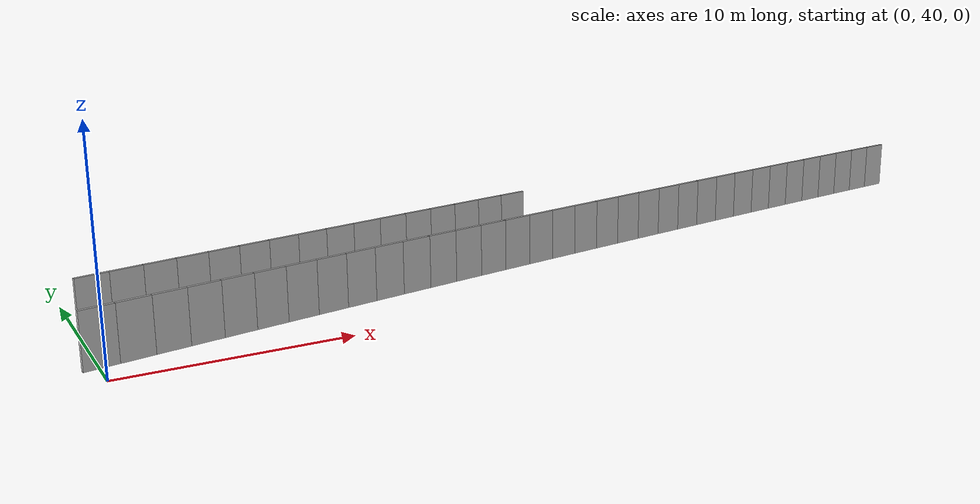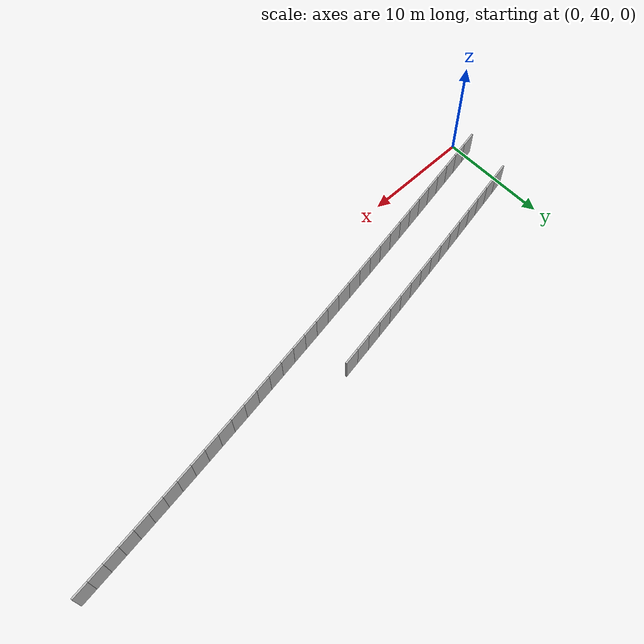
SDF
<?xml version="1.0" ?>
<sdf version="1.6">
  <model name="sps_2046">
    <pose frame="">0 0 0 0 -0 0</pose>
    <static>1</static>
    <self_collide>0</self_collide>
    <allow_auto_disable>0</allow_auto_disable>
    <link name="Wall2953">
      <kinematic>0</kinematic>
      <gravity>1</gravity>
      <self_collide>0</self_collide>
      <collision name="collision">
        <geometry>
          <box>
            <size>1.49646 0.15 2.5</size>
          </box>
        </geometry>
        <pose frame="">0 0 0 0 -0 0</pose>
      </collision>
      <visual name="visual">
        <geometry>
          <box>
            <size>1.49646 0.15 2.5</size>
          </box>
        </geometry>
        <pose frame="">0 0 0 0 -0 0</pose>
        <cast_shadows>1</cast_shadows>
        <transparency>0.0</transparency>
      </visual>
      <pose frame="">48.7704 49.8128 1.25 0 0 -2.99955</pose>
    </link>
    <link name="Wall2954">
      <kinematic>0</kinematic>
      <gravity>1</gravity>
      <self_collide>0</self_collide>
      <collision name="collision">
        <geometry>
          <box>
            <size>1.4964 0.15 2.5</size>
          </box>
        </geometry>
        <pose frame="">0 0 0 0 -0 0</pose>
      </collision>
      <visual name="visual">
        <geometry>
          <box>
            <size>1.4964 0.15 2.5</size>
          </box>
        </geometry>
        <pose frame="">0 0 0 0 -0 0</pose>
        <cast_shadows>1</cast_shadows>
        <transparency>0.0</transparency>
      </visual>
      <pose frame="">47.2892 49.5999 1.25 0 0 -2.9981</pose>
    </link>
    <link name="Wall2955">
      <kinematic>0</kinematic>
      <gravity>1</gravity>
      <self_collide>0</self_collide>
      <collision name="collision">
        <geometry>
          <box>
            <size>1.49656 0.15 2.5</size>
          </box>
        </geometry>
        <pose frame="">0 0 0 0 -0 0</pose>
      </collision>
      <visual name="visual">
        <geometry>
          <box>
            <size>1.49656 0.15 2.5</size>
          </box>
        </geometry>
        <pose frame="">0 0 0 0 -0 0</pose>
        <cast_shadows>1</cast_shadows>
        <transparency>0.0</transparency>
      </visual>
      <pose frame="">45.8082 49.3847 1.25 0 0 -2.99651</pose>
    </link>
    <link name="Wall2956">
      <kinematic>0</kinematic>
      <gravity>1</gravity>
      <self_collide>0</self_collide>
      <collision name="collision">
        <geometry>
          <box>
            <size>1.4964 0.15 2.5</size>
          </box>
        </geometry>
        <pose frame="">0 0 0 0 -0 0</pose>
      </collision>
      <visual name="visual">
        <geometry>
          <box>
            <size>1.4964 0.15 2.5</size>
          </box>
        </geometry>
        <pose frame="">0 0 0 0 -0 0</pose>
        <cast_shadows>1</cast_shadows>
        <transparency>0.0</transparency>
      </visual>
      <pose frame="">44.3277 49.1672 1.25 0 0 -2.99497</pose>
    </link>
    <link name="Wall2957">
      <kinematic>0</kinematic>
      <gravity>1</gravity>
      <self_collide>0</self_collide>
      <collision name="collision">
        <geometry>
          <box>
            <size>1.49666 0.15 2.5</size>
          </box>
        </geometry>
        <pose frame="">0 0 0 0 -0 0</pose>
      </collision>
      <visual name="visual">
        <geometry>
          <box>
            <size>1.49666 0.15 2.5</size>
          </box>
        </geometry>
        <pose frame="">0 0 0 0 -0 0</pose>
        <cast_shadows>1</cast_shadows>
        <transparency>0.0</transparency>
      </visual>
      <pose frame="">42.8474 48.9473 1.25 0 0 -2.99326</pose>
    </link>
    <link name="Wall2958">
      <kinematic>0</kinematic>
      <gravity>1</gravity>
      <self_collide>0</self_collide>
      <collision name="collision">
        <geometry>
          <box>
            <size>1.49636 0.15 2.5</size>
          </box>
        </geometry>
        <pose frame="">0 0 0 0 -0 0</pose>
      </collision>
      <visual name="visual">
        <geometry>
          <box>
            <size>1.49636 0.15 2.5</size>
          </box>
        </geometry>
        <pose frame="">0 0 0 0 -0 0</pose>
        <cast_shadows>1</cast_shadows>
        <transparency>0.0</transparency>
      </visual>
      <pose frame="">41.3675 48.7251 1.25 0 0 -2.99187</pose>
    </link>
    <link name="Wall2959">
      <kinematic>0</kinematic>
      <gravity>1</gravity>
      <self_collide>0</self_collide>
      <collision name="collision">
        <geometry>
          <box>
            <size>1.4965 0.15 2.5</size>
          </box>
        </geometry>
        <pose frame="">0 0 0 0 -0 0</pose>
      </collision>
      <visual name="visual">
        <geometry>
          <box>
            <size>1.4965 0.15 2.5</size>
          </box>
        </geometry>
        <pose frame="">0 0 0 0 -0 0</pose>
        <cast_shadows>1</cast_shadows>
        <transparency>0.0</transparency>
      </visual>
      <pose frame="">39.888 48.5006 1.25 0 0 -2.99015</pose>
    </link>
    <link name="Wall2960">
      <kinematic>0</kinematic>
      <gravity>1</gravity>
      <self_collide>0</self_collide>
      <collision name="collision">
        <geometry>
          <box>
            <size>1.49648 0.15 2.5</size>
          </box>
        </geometry>
        <pose frame="">0 0 0 0 -0 0</pose>
      </collision>
      <visual name="visual">
        <geometry>
          <box>
            <size>1.49648 0.15 2.5</size>
          </box>
        </geometry>
        <pose frame="">0 0 0 0 -0 0</pose>
        <cast_shadows>1</cast_shadows>
        <transparency>0.0</transparency>
      </visual>
      <pose frame="">38.4088 48.2737 1.25 0 0 -2.98862</pose>
    </link>
    <link name="Wall2961">
      <kinematic>0</kinematic>
      <gravity>1</gravity>
      <self_collide>0</self_collide>
      <collision name="collision">
        <geometry>
          <box>
            <size>1.49648 0.15 2.5</size>
          </box>
        </geometry>
        <pose frame="">0 0 0 0 -0 0</pose>
      </collision>
      <visual name="visual">
        <geometry>
          <box>
            <size>1.49648 0.15 2.5</size>
          </box>
        </geometry>
        <pose frame="">0 0 0 0 -0 0</pose>
        <cast_shadows>1</cast_shadows>
        <transparency>0.0</transparency>
      </visual>
      <pose frame="">36.93 48.0445 1.25 0 0 -2.98701</pose>
    </link>
    <link name="Wall2962">
      <kinematic>0</kinematic>
      <gravity>1</gravity>
      <self_collide>0</self_collide>
      <collision name="collision">
        <geometry>
          <box>
            <size>1.49661 0.15 2.5</size>
          </box>
        </geometry>
        <pose frame="">0 0 0 0 -0 0</pose>
      </collision>
      <visual name="visual">
        <geometry>
          <box>
            <size>1.49661 0.15 2.5</size>
          </box>
        </geometry>
        <pose frame="">0 0 0 0 -0 0</pose>
        <cast_shadows>1</cast_shadows>
        <transparency>0.0</transparency>
      </visual>
      <pose frame="">35.4514 47.8129 1.25 0 0 -2.98541</pose>
    </link>
    <link name="Wall2963">
      <kinematic>0</kinematic>
      <gravity>1</gravity>
      <self_collide>0</self_collide>
      <collision name="collision">
        <geometry>
          <box>
            <size>1.49638 0.15 2.5</size>
          </box>
        </geometry>
        <pose frame="">0 0 0 0 -0 0</pose>
      </collision>
      <visual name="visual">
        <geometry>
          <box>
            <size>1.49638 0.15 2.5</size>
          </box>
        </geometry>
        <pose frame="">0 0 0 0 -0 0</pose>
        <cast_shadows>1</cast_shadows>
        <transparency>0.0</transparency>
      </visual>
      <pose frame="">33.9733 47.5789 1.25 0 0 -2.98378</pose>
    </link>
    <link name="Wall2964">
      <kinematic>0</kinematic>
      <gravity>1</gravity>
      <self_collide>0</self_collide>
      <collision name="collision">
        <geometry>
          <box>
            <size>1.49658 0.15 2.5</size>
          </box>
        </geometry>
        <pose frame="">0 0 0 0 -0 0</pose>
      </collision>
      <visual name="visual">
        <geometry>
          <box>
            <size>1.49658 0.15 2.5</size>
          </box>
        </geometry>
        <pose frame="">0 0 0 0 -0 0</pose>
        <cast_shadows>1</cast_shadows>
        <transparency>0.0</transparency>
      </visual>
      <pose frame="">32.4957 47.3425 1.25 0 0 -2.98215</pose>
    </link>
    <link name="Wall2965">
      <kinematic>0</kinematic>
      <gravity>1</gravity>
      <self_collide>0</self_collide>
      <collision name="collision">
        <geometry>
          <box>
            <size>1.49648 0.15 2.5</size>
          </box>
        </geometry>
        <pose frame="">0 0 0 0 -0 0</pose>
      </collision>
      <visual name="visual">
        <geometry>
          <box>
            <size>1.49648 0.15 2.5</size>
          </box>
        </geometry>
        <pose frame="">0 0 0 0 -0 0</pose>
        <cast_shadows>1</cast_shadows>
        <transparency>0.0</transparency>
      </visual>
      <pose frame="">31.0183 47.1039 1.25 0 0 -2.98078</pose>
    </link>
    <link name="Wall2966">
      <kinematic>0</kinematic>
      <gravity>1</gravity>
      <self_collide>0</self_collide>
      <collision name="collision">
        <geometry>
          <box>
            <size>1.49653 0.15 2.5</size>
          </box>
        </geometry>
        <pose frame="">0 0 0 0 -0 0</pose>
      </collision>
      <visual name="visual">
        <geometry>
          <box>
            <size>1.49653 0.15 2.5</size>
          </box>
        </geometry>
        <pose frame="">0 0 0 0 -0 0</pose>
        <cast_shadows>1</cast_shadows>
        <transparency>0.0</transparency>
      </visual>
      <pose frame="">29.5413 46.863 1.25 0 0 -2.97905</pose>
    </link>
    <link name="Wall2967">
      <kinematic>0</kinematic>
      <gravity>1</gravity>
      <self_collide>0</self_collide>
      <collision name="collision">
        <geometry>
          <box>
            <size>1.49657 0.15 2.5</size>
          </box>
        </geometry>
        <pose frame="">0 0 0 0 -0 0</pose>
      </collision>
      <visual name="visual">
        <geometry>
          <box>
            <size>1.49657 0.15 2.5</size>
          </box>
        </geometry>
        <pose frame="">0 0 0 0 -0 0</pose>
        <cast_shadows>1</cast_shadows>
        <transparency>0.0</transparency>
      </visual>
      <pose frame="">28.0647 46.6196 1.25 0 0 -2.9774</pose>
    </link>
    <link name="Wall2968">
      <kinematic>0</kinematic>
      <gravity>1</gravity>
      <self_collide>0</self_collide>
      <collision name="collision">
        <geometry>
          <box>
            <size>1.49644 0.15 2.5</size>
          </box>
        </geometry>
        <pose frame="">0 0 0 0 -0 0</pose>
      </collision>
      <visual name="visual">
        <geometry>
          <box>
            <size>1.49644 0.15 2.5</size>
          </box>
        </geometry>
        <pose frame="">0 0 0 0 -0 0</pose>
        <cast_shadows>1</cast_shadows>
        <transparency>0.0</transparency>
      </visual>
      <pose frame="">26.5885 46.3739 1.25 0 0 -2.97593</pose>
    </link>
    <link name="Wall2969">
      <kinematic>0</kinematic>
      <gravity>1</gravity>
      <self_collide>0</self_collide>
      <collision name="collision">
        <geometry>
          <box>
            <size>1.49654 0.15 2.5</size>
          </box>
        </geometry>
        <pose frame="">0 0 0 0 -0 0</pose>
      </collision>
      <visual name="visual">
        <geometry>
          <box>
            <size>1.49654 0.15 2.5</size>
          </box>
        </geometry>
        <pose frame="">0 0 0 0 -0 0</pose>
        <cast_shadows>1</cast_shadows>
        <transparency>0.0</transparency>
      </visual>
      <pose frame="">25.1127 46.1259 1.25 0 0 -2.97429</pose>
    </link>
    <link name="Wall2970">
      <kinematic>0</kinematic>
      <gravity>1</gravity>
      <self_collide>0</self_collide>
      <collision name="collision">
        <geometry>
          <box>
            <size>1.49646 0.15 2.5</size>
          </box>
        </geometry>
        <pose frame="">0 0 0 0 -0 0</pose>
      </collision>
      <visual name="visual">
        <geometry>
          <box>
            <size>1.49646 0.15 2.5</size>
          </box>
        </geometry>
        <pose frame="">0 0 0 0 -0 0</pose>
        <cast_shadows>1</cast_shadows>
        <transparency>0.0</transparency>
      </visual>
      <pose frame="">23.6373 45.8755 1.25 0 0 -2.97267</pose>
    </link>
    <link name="Wall2971">
      <kinematic>0</kinematic>
      <gravity>1</gravity>
      <self_collide>0</self_collide>
      <collision name="collision">
        <geometry>
          <box>
            <size>1.49654 0.15 2.5</size>
          </box>
        </geometry>
        <pose frame="">0 0 0 0 -0 0</pose>
      </collision>
      <visual name="visual">
        <geometry>
          <box>
            <size>1.49654 0.15 2.5</size>
          </box>
        </geometry>
        <pose frame="">0 0 0 0 -0 0</pose>
        <cast_shadows>1</cast_shadows>
        <transparency>0.0</transparency>
      </visual>
      <pose frame="">22.1623 45.6228 1.25 0 0 -2.97115</pose>
    </link>
    <link name="Wall2972">
      <kinematic>0</kinematic>
      <gravity>1</gravity>
      <self_collide>0</self_collide>
      <collision name="collision">
        <geometry>
          <box>
            <size>1.49627 0.15 2.5</size>
          </box>
        </geometry>
        <pose frame="">0 0 0 0 -0 0</pose>
      </collision>
      <visual name="visual">
        <geometry>
          <box>
            <size>1.49627 0.15 2.5</size>
          </box>
        </geometry>
        <pose frame="">0 0 0 0 -0 0</pose>
        <cast_shadows>1</cast_shadows>
        <transparency>0.0</transparency>
      </visual>
      <pose frame="">20.6877 45.3678 1.25 0 0 -2.96954</pose>
    </link>
    <link name="Wall2973">
      <kinematic>0</kinematic>
      <gravity>1</gravity>
      <self_collide>0</self_collide>
      <collision name="collision">
        <geometry>
          <box>
            <size>1.49644 0.15 2.5</size>
          </box>
        </geometry>
        <pose frame="">0 0 0 0 -0 0</pose>
      </collision>
      <visual name="visual">
        <geometry>
          <box>
            <size>1.49644 0.15 2.5</size>
          </box>
        </geometry>
        <pose frame="">0 0 0 0 -0 0</pose>
        <cast_shadows>1</cast_shadows>
        <transparency>0.0</transparency>
      </visual>
      <pose frame="">19.2136 45.1106 1.25 0 0 -2.9682</pose>
    </link>
    <link name="Wall2974">
      <kinematic>0</kinematic>
      <gravity>1</gravity>
      <self_collide>0</self_collide>
      <collision name="collision">
        <geometry>
          <box>
            <size>1.49647 0.15 2.5</size>
          </box>
        </geometry>
        <pose frame="">0 0 0 0 -0 0</pose>
      </collision>
      <visual name="visual">
        <geometry>
          <box>
            <size>1.49647 0.15 2.5</size>
          </box>
        </geometry>
        <pose frame="">0 0 0 0 -0 0</pose>
        <cast_shadows>1</cast_shadows>
        <transparency>0.0</transparency>
      </visual>
      <pose frame="">17.7399 44.8511 1.25 0 0 -2.96642</pose>
    </link>
    <link name="Wall2975">
      <kinematic>0</kinematic>
      <gravity>1</gravity>
      <self_collide>0</self_collide>
      <collision name="collision">
        <geometry>
          <box>
            <size>1.49654 0.15 2.5</size>
          </box>
        </geometry>
        <pose frame="">0 0 0 0 -0 0</pose>
      </collision>
      <visual name="visual">
        <geometry>
          <box>
            <size>1.49654 0.15 2.5</size>
          </box>
        </geometry>
        <pose frame="">0 0 0 0 -0 0</pose>
        <cast_shadows>1</cast_shadows>
        <transparency>0.0</transparency>
      </visual>
      <pose frame="">16.2665 44.5891 1.25 0 0 -2.96477</pose>
    </link>
    <link name="Wall2976">
      <kinematic>0</kinematic>
      <gravity>1</gravity>
      <self_collide>0</self_collide>
      <collision name="collision">
        <geometry>
          <box>
            <size>1.49659 0.15 2.5</size>
          </box>
        </geometry>
        <pose frame="">0 0 0 0 -0 0</pose>
      </collision>
      <visual name="visual">
        <geometry>
          <box>
            <size>1.49659 0.15 2.5</size>
          </box>
        </geometry>
        <pose frame="">0 0 0 0 -0 0</pose>
        <cast_shadows>1</cast_shadows>
        <transparency>0.0</transparency>
      </visual>
      <pose frame="">14.7934 44.3247 1.25 0 0 -2.9632</pose>
    </link>
    <link name="Wall2977">
      <kinematic>0</kinematic>
      <gravity>1</gravity>
      <self_collide>0</self_collide>
      <collision name="collision">
        <geometry>
          <box>
            <size>1.49651 0.15 2.5</size>
          </box>
        </geometry>
        <pose frame="">0 0 0 0 -0 0</pose>
      </collision>
      <visual name="visual">
        <geometry>
          <box>
            <size>1.49651 0.15 2.5</size>
          </box>
        </geometry>
        <pose frame="">0 0 0 0 -0 0</pose>
        <cast_shadows>1</cast_shadows>
        <transparency>0.0</transparency>
      </visual>
      <pose frame="">13.3209 44.058 1.25 0 0 -2.96166</pose>
    </link>
    <link name="Wall2978">
      <kinematic>0</kinematic>
      <gravity>1</gravity>
      <self_collide>0</self_collide>
      <collision name="collision">
        <geometry>
          <box>
            <size>1.49637 0.15 2.5</size>
          </box>
        </geometry>
        <pose frame="">0 0 0 0 -0 0</pose>
      </collision>
      <visual name="visual">
        <geometry>
          <box>
            <size>1.49637 0.15 2.5</size>
          </box>
        </geometry>
        <pose frame="">0 0 0 0 -0 0</pose>
        <cast_shadows>1</cast_shadows>
        <transparency>0.0</transparency>
      </visual>
      <pose frame="">11.8488 43.7891 1.25 0 0 -2.96015</pose>
    </link>
    <link name="Wall2979">
      <kinematic>0</kinematic>
      <gravity>1</gravity>
      <self_collide>0</self_collide>
      <collision name="collision">
        <geometry>
          <box>
            <size>1.49665 0.15 2.5</size>
          </box>
        </geometry>
        <pose frame="">0 0 0 0 -0 0</pose>
      </collision>
      <visual name="visual">
        <geometry>
          <box>
            <size>1.49665 0.15 2.5</size>
          </box>
        </geometry>
        <pose frame="">0 0 0 0 -0 0</pose>
        <cast_shadows>1</cast_shadows>
        <transparency>0.0</transparency>
      </visual>
      <pose frame="">10.3771 43.5178 1.25 0 0 -2.95844</pose>
    </link>
    <link name="Wall2980">
      <kinematic>0</kinematic>
      <gravity>1</gravity>
      <self_collide>0</self_collide>
      <collision name="collision">
        <geometry>
          <box>
            <size>1.49649 0.15 2.5</size>
          </box>
        </geometry>
        <pose frame="">0 0 0 0 -0 0</pose>
      </collision>
      <visual name="visual">
        <geometry>
          <box>
            <size>1.49649 0.15 2.5</size>
          </box>
        </geometry>
        <pose frame="">0 0 0 0 -0 0</pose>
        <cast_shadows>1</cast_shadows>
        <transparency>0.0</transparency>
      </visual>
      <pose frame="">8.90575 43.244 1.25 0 0 -2.9568</pose>
    </link>
    <link name="Wall2981">
      <kinematic>0</kinematic>
      <gravity>1</gravity>
      <self_collide>0</self_collide>
      <collision name="collision">
        <geometry>
          <box>
            <size>1.49666 0.15 2.5</size>
          </box>
        </geometry>
        <pose frame="">0 0 0 0 -0 0</pose>
      </collision>
      <visual name="visual">
        <geometry>
          <box>
            <size>1.49666 0.15 2.5</size>
          </box>
        </geometry>
        <pose frame="">0 0 0 0 -0 0</pose>
        <cast_shadows>1</cast_shadows>
        <transparency>0.0</transparency>
      </visual>
      <pose frame="">7.43487 42.9679 1.25 0 0 -2.95529</pose>
    </link>
    <link name="Wall2982">
      <kinematic>0</kinematic>
      <gravity>1</gravity>
      <self_collide>0</self_collide>
      <collision name="collision">
        <geometry>
          <box>
            <size>1.49635 0.15 2.5</size>
          </box>
        </geometry>
        <pose frame="">0 0 0 0 -0 0</pose>
      </collision>
      <visual name="visual">
        <geometry>
          <box>
            <size>1.49635 0.15 2.5</size>
          </box>
        </geometry>
        <pose frame="">0 0 0 0 -0 0</pose>
        <cast_shadows>1</cast_shadows>
        <transparency>0.0</transparency>
      </visual>
      <pose frame="">5.96447 42.6896 1.25 0 0 -2.95376</pose>
    </link>
    <link name="Wall2983">
      <kinematic>0</kinematic>
      <gravity>1</gravity>
      <self_collide>0</self_collide>
      <collision name="collision">
        <geometry>
          <box>
            <size>1.49659 0.15 2.5</size>
          </box>
        </geometry>
        <pose frame="">0 0 0 0 -0 0</pose>
      </collision>
      <visual name="visual">
        <geometry>
          <box>
            <size>1.49659 0.15 2.5</size>
          </box>
        </geometry>
        <pose frame="">0 0 0 0 -0 0</pose>
        <cast_shadows>1</cast_shadows>
        <transparency>0.0</transparency>
      </visual>
      <pose frame="">4.49456 42.4089 1.25 0 0 -2.95204</pose>
    </link>
    <link name="Wall2984">
      <kinematic>0</kinematic>
      <gravity>1</gravity>
      <self_collide>0</self_collide>
      <collision name="collision">
        <geometry>
          <box>
            <size>1.49647 0.15 2.5</size>
          </box>
        </geometry>
        <pose frame="">0 0 0 0 -0 0</pose>
      </collision>
      <visual name="visual">
        <geometry>
          <box>
            <size>1.49647 0.15 2.5</size>
          </box>
        </geometry>
        <pose frame="">0 0 0 0 -0 0</pose>
        <cast_shadows>1</cast_shadows>
        <transparency>0.0</transparency>
      </visual>
      <pose frame="">3.02505 42.1258 1.25 0 0 -2.95053</pose>
    </link>
    <link name="Wall2985">
      <kinematic>0</kinematic>
      <gravity>1</gravity>
      <self_collide>0</self_collide>
      <collision name="collision">
        <geometry>
          <box>
            <size>1.49642 0.15 2.5</size>
          </box>
        </geometry>
        <pose frame="">0 0 0 0 -0 0</pose>
      </collision>
      <visual name="visual">
        <geometry>
          <box>
            <size>1.49642 0.15 2.5</size>
          </box>
        </geometry>
        <pose frame="">0 0 0 0 -0 0</pose>
        <cast_shadows>1</cast_shadows>
        <transparency>0.0</transparency>
      </visual>
      <pose frame="">1.55605 41.8405 1.25 0 0 -2.94899</pose>
    </link>
    <link name="Wall2986">
      <kinematic>0</kinematic>
      <gravity>1</gravity>
      <self_collide>0</self_collide>
      <collision name="collision">
        <geometry>
          <box>
            <size>1.49657 0.15 2.5</size>
          </box>
        </geometry>
        <pose frame="">0 0 0 0 -0 0</pose>
      </collision>
      <visual name="visual">
        <geometry>
          <box>
            <size>1.49657 0.15 2.5</size>
          </box>
        </geometry>
        <pose frame="">0 0 0 0 -0 0</pose>
        <cast_shadows>1</cast_shadows>
        <transparency>0.0</transparency>
      </visual>
      <pose frame="">0.0874551 41.5529 1.25 0 0 -2.94743</pose>
    </link>
    <link name="Wall5581">
      <kinematic>0</kinematic>
      <gravity>1</gravity>
      <self_collide>0</self_collide>
      <collision name="collision">
        <geometry>
          <box>
            <size>1.50318 0.15 2.5</size>
          </box>
        </geometry>
        <pose frame="">0 0 0 0 -0 0</pose>
      </collision>
      <visual name="visual">
        <geometry>
          <box>
            <size>1.50318 0.15 2.5</size>
          </box>
        </geometry>
        <pose frame="">0 0 0 0 -0 0</pose>
        <cast_shadows>1</cast_shadows>
        <transparency>0.0</transparency>
      </visual>
      <pose frame="">22.9365 49.9554 1.25 0 0 -2.97277</pose>
    </link>
    <link name="Wall5582">
      <kinematic>0</kinematic>
      <gravity>1</gravity>
      <self_collide>0</self_collide>
      <collision name="collision">
        <geometry>
          <box>
            <size>1.50299 0.15 2.5</size>
          </box>
        </geometry>
        <pose frame="">0 0 0 0 -0 0</pose>
      </collision>
      <visual name="visual">
        <geometry>
          <box>
            <size>1.50299 0.15 2.5</size>
          </box>
        </geometry>
        <pose frame="">0 0 0 0 -0 0</pose>
        <cast_shadows>1</cast_shadows>
        <transparency>0.0</transparency>
      </visual>
      <pose frame="">21.455 49.7016 1.25 0 0 -2.9711</pose>
    </link>
    <link name="Wall5583">
      <kinematic>0</kinematic>
      <gravity>1</gravity>
      <self_collide>0</self_collide>
      <collision name="collision">
        <geometry>
          <box>
            <size>1.50299 0.15 2.5</size>
          </box>
        </geometry>
        <pose frame="">0 0 0 0 -0 0</pose>
      </collision>
      <visual name="visual">
        <geometry>
          <box>
            <size>1.50299 0.15 2.5</size>
          </box>
        </geometry>
        <pose frame="">0 0 0 0 -0 0</pose>
        <cast_shadows>1</cast_shadows>
        <transparency>0.0</transparency>
      </visual>
      <pose frame="">19.9741 49.4454 1.25 0 0 -2.96945</pose>
    </link>
    <link name="Wall5584">
      <kinematic>0</kinematic>
      <gravity>1</gravity>
      <self_collide>0</self_collide>
      <collision name="collision">
        <geometry>
          <box>
            <size>1.50314 0.15 2.5</size>
          </box>
        </geometry>
        <pose frame="">0 0 0 0 -0 0</pose>
      </collision>
      <visual name="visual">
        <geometry>
          <box>
            <size>1.50314 0.15 2.5</size>
          </box>
        </geometry>
        <pose frame="">0 0 0 0 -0 0</pose>
        <cast_shadows>1</cast_shadows>
        <transparency>0.0</transparency>
      </visual>
      <pose frame="">18.4934 49.187 1.25 0 0 -2.96815</pose>
    </link>
    <link name="Wall5585">
      <kinematic>0</kinematic>
      <gravity>1</gravity>
      <self_collide>0</self_collide>
      <collision name="collision">
        <geometry>
          <box>
            <size>1.50301 0.15 2.5</size>
          </box>
        </geometry>
        <pose frame="">0 0 0 0 -0 0</pose>
      </collision>
      <visual name="visual">
        <geometry>
          <box>
            <size>1.50301 0.15 2.5</size>
          </box>
        </geometry>
        <pose frame="">0 0 0 0 -0 0</pose>
        <cast_shadows>1</cast_shadows>
        <transparency>0.0</transparency>
      </visual>
      <pose frame="">17.0131 48.9264 1.25 0 0 -2.96653</pose>
    </link>
    <link name="Wall5586">
      <kinematic>0</kinematic>
      <gravity>1</gravity>
      <self_collide>0</self_collide>
      <collision name="collision">
        <geometry>
          <box>
            <size>1.50323 0.15 2.5</size>
          </box>
        </geometry>
        <pose frame="">0 0 0 0 -0 0</pose>
      </collision>
      <visual name="visual">
        <geometry>
          <box>
            <size>1.50323 0.15 2.5</size>
          </box>
        </geometry>
        <pose frame="">0 0 0 0 -0 0</pose>
        <cast_shadows>1</cast_shadows>
        <transparency>0.0</transparency>
      </visual>
      <pose frame="">15.5331 48.6633 1.25 0 0 -2.96478</pose>
    </link>
    <link name="Wall5587">
      <kinematic>0</kinematic>
      <gravity>1</gravity>
      <self_collide>0</self_collide>
      <collision name="collision">
        <geometry>
          <box>
            <size>1.50302 0.15 2.5</size>
          </box>
        </geometry>
        <pose frame="">0 0 0 0 -0 0</pose>
      </collision>
      <visual name="visual">
        <geometry>
          <box>
            <size>1.50302 0.15 2.5</size>
          </box>
        </geometry>
        <pose frame="">0 0 0 0 -0 0</pose>
        <cast_shadows>1</cast_shadows>
        <transparency>0.0</transparency>
      </visual>
      <pose frame="">14.0536 48.3978 1.25 0 0 -2.96327</pose>
    </link>
    <link name="Wall5588">
      <kinematic>0</kinematic>
      <gravity>1</gravity>
      <self_collide>0</self_collide>
      <collision name="collision">
        <geometry>
          <box>
            <size>1.50312 0.15 2.5</size>
          </box>
        </geometry>
        <pose frame="">0 0 0 0 -0 0</pose>
      </collision>
      <visual name="visual">
        <geometry>
          <box>
            <size>1.50312 0.15 2.5</size>
          </box>
        </geometry>
        <pose frame="">0 0 0 0 -0 0</pose>
        <cast_shadows>1</cast_shadows>
        <transparency>0.0</transparency>
      </visual>
      <pose frame="">12.5746 48.1299 1.25 0 0 -2.96155</pose>
    </link>
    <link name="Wall5589">
      <kinematic>0</kinematic>
      <gravity>1</gravity>
      <self_collide>0</self_collide>
      <collision name="collision">
        <geometry>
          <box>
            <size>1.50283 0.15 2.5</size>
          </box>
        </geometry>
        <pose frame="">0 0 0 0 -0 0</pose>
      </collision>
      <visual name="visual">
        <geometry>
          <box>
            <size>1.50283 0.15 2.5</size>
          </box>
        </geometry>
        <pose frame="">0 0 0 0 -0 0</pose>
        <cast_shadows>1</cast_shadows>
        <transparency>0.0</transparency>
      </visual>
      <pose frame="">11.0962 47.8597 1.25 0 0 -2.96011</pose>
    </link>
    <link name="Wall5590">
      <kinematic>0</kinematic>
      <gravity>1</gravity>
      <self_collide>0</self_collide>
      <collision name="collision">
        <geometry>
          <box>
            <size>1.50317 0.15 2.5</size>
          </box>
        </geometry>
        <pose frame="">0 0 0 0 -0 0</pose>
      </collision>
      <visual name="visual">
        <geometry>
          <box>
            <size>1.50317 0.15 2.5</size>
          </box>
        </geometry>
        <pose frame="">0 0 0 0 -0 0</pose>
        <cast_shadows>1</cast_shadows>
        <transparency>0.0</transparency>
      </visual>
      <pose frame="">9.61806 47.5872 1.25 0 0 -2.95842</pose>
    </link>
    <link name="Wall5591">
      <kinematic>0</kinematic>
      <gravity>1</gravity>
      <self_collide>0</self_collide>
      <collision name="collision">
        <geometry>
          <box>
            <size>1.50316 0.15 2.5</size>
          </box>
        </geometry>
        <pose frame="">0 0 0 0 -0 0</pose>
      </collision>
      <visual name="visual">
        <geometry>
          <box>
            <size>1.50316 0.15 2.5</size>
          </box>
        </geometry>
        <pose frame="">0 0 0 0 -0 0</pose>
        <cast_shadows>1</cast_shadows>
        <transparency>0.0</transparency>
      </visual>
      <pose frame="">8.14025 47.3123 1.25 0 0 -2.95693</pose>
    </link>
    <link name="Wall5592">
      <kinematic>0</kinematic>
      <gravity>1</gravity>
      <self_collide>0</self_collide>
      <collision name="collision">
        <geometry>
          <box>
            <size>1.50303 0.15 2.5</size>
          </box>
        </geometry>
        <pose frame="">0 0 0 0 -0 0</pose>
      </collision>
      <visual name="visual">
        <geometry>
          <box>
            <size>1.50303 0.15 2.5</size>
          </box>
        </geometry>
        <pose frame="">0 0 0 0 -0 0</pose>
        <cast_shadows>1</cast_shadows>
        <transparency>0.0</transparency>
      </visual>
      <pose frame="">6.66296 47.035 1.25 0 0 -2.95518</pose>
    </link>
    <link name="Wall5593">
      <kinematic>0</kinematic>
      <gravity>1</gravity>
      <self_collide>0</self_collide>
      <collision name="collision">
        <geometry>
          <box>
            <size>1.50324 0.15 2.5</size>
          </box>
        </geometry>
        <pose frame="">0 0 0 0 -0 0</pose>
      </collision>
      <visual name="visual">
        <geometry>
          <box>
            <size>1.50324 0.15 2.5</size>
          </box>
        </geometry>
        <pose frame="">0 0 0 0 -0 0</pose>
        <cast_shadows>1</cast_shadows>
        <transparency>0.0</transparency>
      </visual>
      <pose frame="">5.18606 46.7554 1.25 0 0 -2.9538</pose>
    </link>
    <link name="Wall5594">
      <kinematic>0</kinematic>
      <gravity>1</gravity>
      <self_collide>0</self_collide>
      <collision name="collision">
        <geometry>
          <box>
            <size>1.50312 0.15 2.5</size>
          </box>
        </geometry>
        <pose frame="">0 0 0 0 -0 0</pose>
      </collision>
      <visual name="visual">
        <geometry>
          <box>
            <size>1.50312 0.15 2.5</size>
          </box>
        </geometry>
        <pose frame="">0 0 0 0 -0 0</pose>
        <cast_shadows>1</cast_shadows>
        <transparency>0.0</transparency>
      </visual>
      <pose frame="">3.70956 46.4735 1.25 0 0 -2.95205</pose>
    </link>
    <link name="Wall5595">
      <kinematic>0</kinematic>
      <gravity>1</gravity>
      <self_collide>0</self_collide>
      <collision name="collision">
        <geometry>
          <box>
            <size>1.50321 0.15 2.5</size>
          </box>
        </geometry>
        <pose frame="">0 0 0 0 -0 0</pose>
      </collision>
      <visual name="visual">
        <geometry>
          <box>
            <size>1.50321 0.15 2.5</size>
          </box>
        </geometry>
        <pose frame="">0 0 0 0 -0 0</pose>
        <cast_shadows>1</cast_shadows>
        <transparency>0.0</transparency>
      </visual>
      <pose frame="">2.23354 46.1891 1.25 0 0 -2.95045</pose>
    </link>
    <link name="Wall5596">
      <kinematic>0</kinematic>
      <gravity>1</gravity>
      <self_collide>0</self_collide>
      <collision name="collision">
        <geometry>
          <box>
            <size>1.50293 0.15 2.5</size>
          </box>
        </geometry>
        <pose frame="">0 0 0 0 -0 0</pose>
      </collision>
      <visual name="visual">
        <geometry>
          <box>
            <size>1.50293 0.15 2.5</size>
          </box>
        </geometry>
        <pose frame="">0 0 0 0 -0 0</pose>
        <cast_shadows>1</cast_shadows>
        <transparency>0.0</transparency>
      </visual>
      <pose frame="">0.758048 45.9025 1.25 0 0 -2.94905</pose>
    </link>
  </model>
</sdf>
